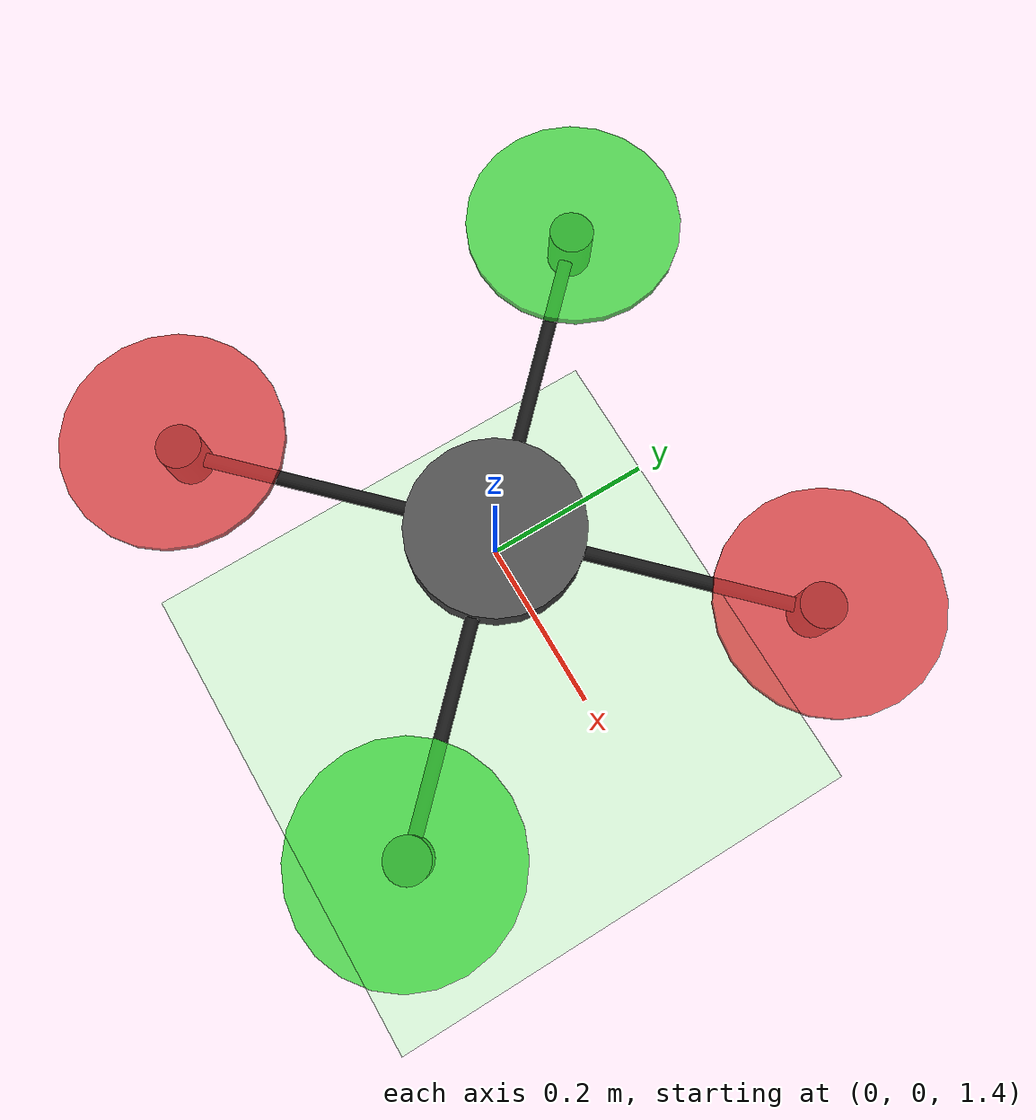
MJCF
<mujoco model="quadrotor">
  <compiler angle="radian"/>

  <option timestep="0.005"/>

  <worldbody>
    <geom name="ground" size="20 20 0.1" type="plane" rgba="0.8 0.9 0.8 1"/>
    <body name="quadrotor" pos="0 0 1.5">
      <joint name="quad_free_joint" type="free"/>
      <geom name="center_body" size="0.1 0.02" type="cylinder" mass="0.3" rgba="0.3 0.3 0.3 1"/>
      <geom name="arm1" size="0.008 0.176777" pos="0.125 0.125 0" quat="0.707107 0.5 -0.5 0" type="capsule" mass="0.05" rgba="0.1 0.1 0.1 1"/>
      <geom name="arm2" size="0.008 0.176777" pos="0.125 -0.125 0" quat="0.707107 -0.5 -0.5 0" type="capsule" mass="0.05" rgba="0.1 0.1 0.1 1"/>
      <geom name="arm3" size="0.008 0.176777" pos="-0.125 -0.125 0" quat="0.707107 -0.5 0.5 0" type="capsule" mass="0.05" rgba="0.1 0.1 0.1 1"/>
      <geom name="arm4" size="0.008 0.176777" pos="-0.125 0.125 0" quat="0.707107 0.5 0.5 0" type="capsule" mass="0.05" rgba="0.1 0.1 0.1 1"/>
      <body name="motor1" pos="0.25 0.25 0">
        <geom name="motor1_geom" size="0.025 0.03" type="cylinder" mass="0.05" rgba="0.2 0.2 0.2 1"/>
        <body name="rotor1" pos="0 0 0.05">
          <joint name="rotor1_joint" pos="0 0 0" axis="0 0 1"/>
          <geom name="propeller1" size="0.12 0.005" type="cylinder" mass="0.02" rgba="0.8 0.2 0.2 0.8"/>
        </body>
      </body>
      <body name="motor2" pos="0.25 -0.25 0">
        <geom name="motor2_geom" size="0.025 0.03" type="cylinder" mass="0.05" rgba="0.2 0.2 0.2 1"/>
        <body name="rotor2" pos="0 0 0.05">
          <joint name="rotor2_joint" pos="0 0 0" axis="0 0 1"/>
          <geom name="propeller2" size="0.12 0.005" type="cylinder" mass="0.02" rgba="0.2 0.8 0.2 0.8"/>
        </body>
      </body>
      <body name="motor3" pos="-0.25 -0.25 0">
        <geom name="motor3_geom" size="0.025 0.03" type="cylinder" mass="0.05" rgba="0.2 0.2 0.2 1"/>
        <body name="rotor3" pos="0 0 0.05">
          <joint name="rotor3_joint" pos="0 0 0" axis="0 0 1"/>
          <geom name="propeller3" size="0.12 0.005" type="cylinder" mass="0.02" rgba="0.8 0.2 0.2 0.8"/>
        </body>
      </body>
      <body name="motor4" pos="-0.25 0.25 0">
        <geom name="motor4_geom" size="0.025 0.03" type="cylinder" mass="0.05" rgba="0.2 0.2 0.2 1"/>
        <body name="rotor4" pos="0 0 0.05">
          <joint name="rotor4_joint" pos="0 0 0" axis="0 0 1"/>
          <geom name="propeller4" size="0.12 0.005" type="cylinder" mass="0.02" rgba="0.2 0.8 0.2 0.8"/>
        </body>
      </body>
    </body>
  </worldbody>

  <actuator>
    <general name="motor1_ctrl" joint="rotor1_joint" gear="50 0 0 0 0 0"/>
    <general name="motor2_ctrl" joint="rotor2_joint" gear="50 0 0 0 0 0"/>
    <general name="motor3_ctrl" joint="rotor3_joint" gear="50 0 0 0 0 0"/>
    <general name="motor4_ctrl" joint="rotor4_joint" gear="50 0 0 0 0 0"/>
  </actuator>
</mujoco>
